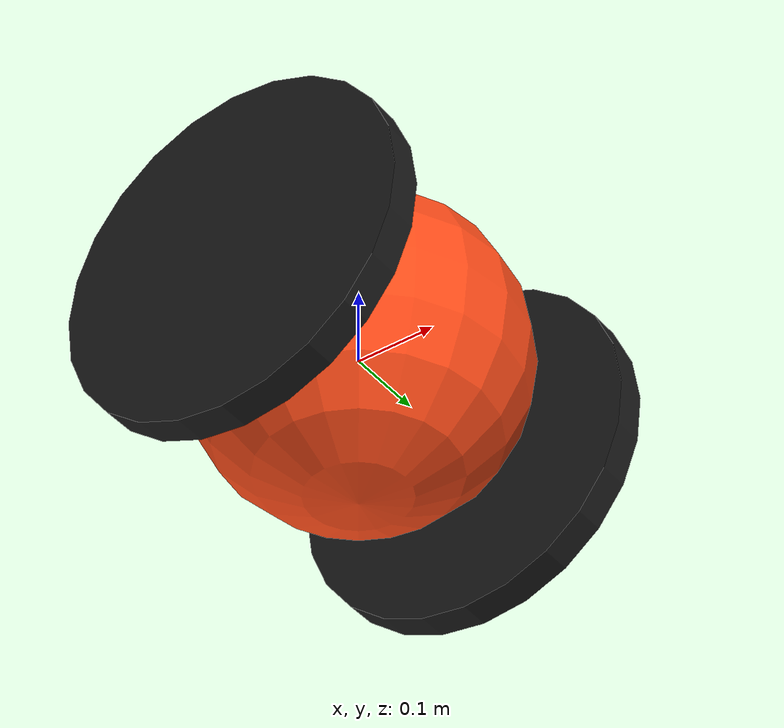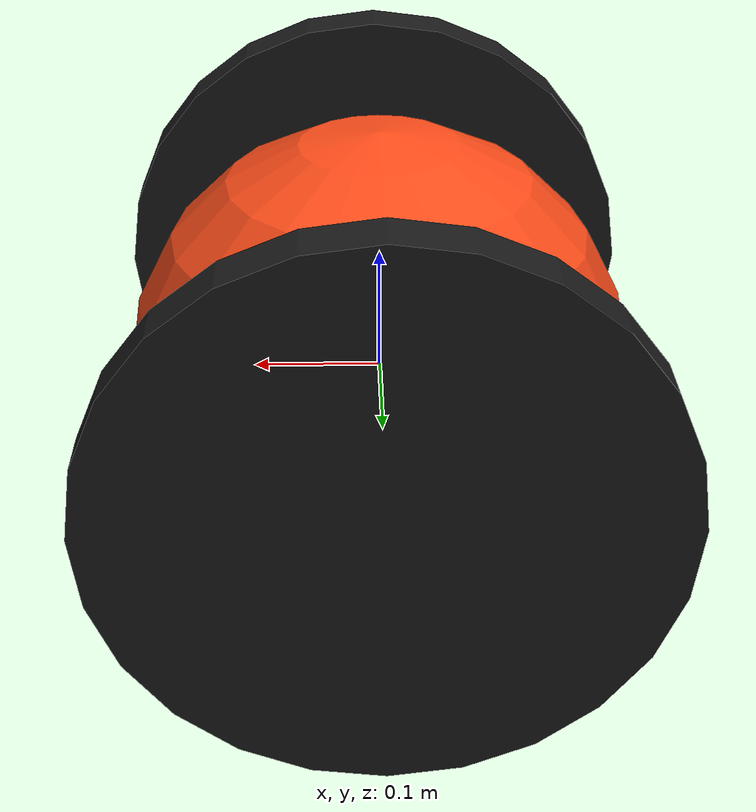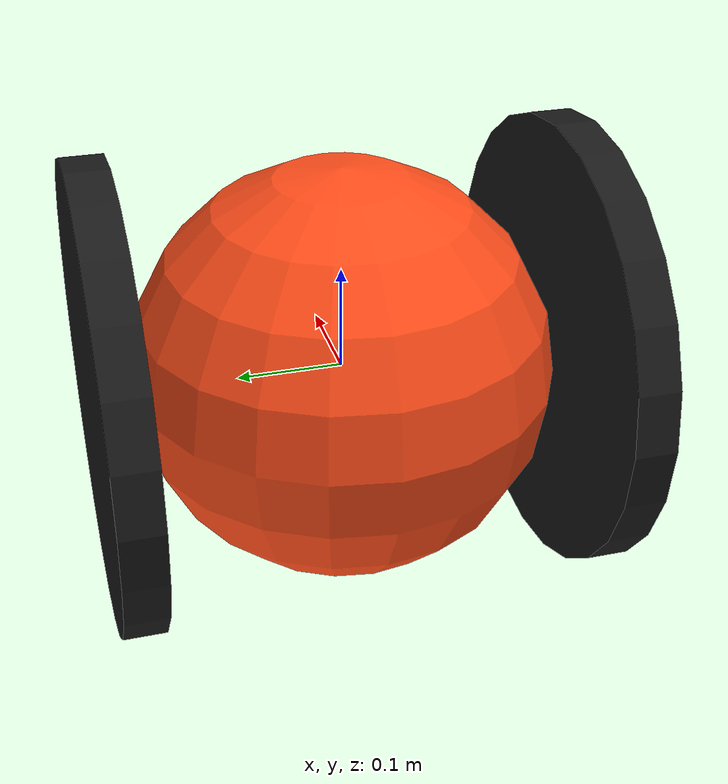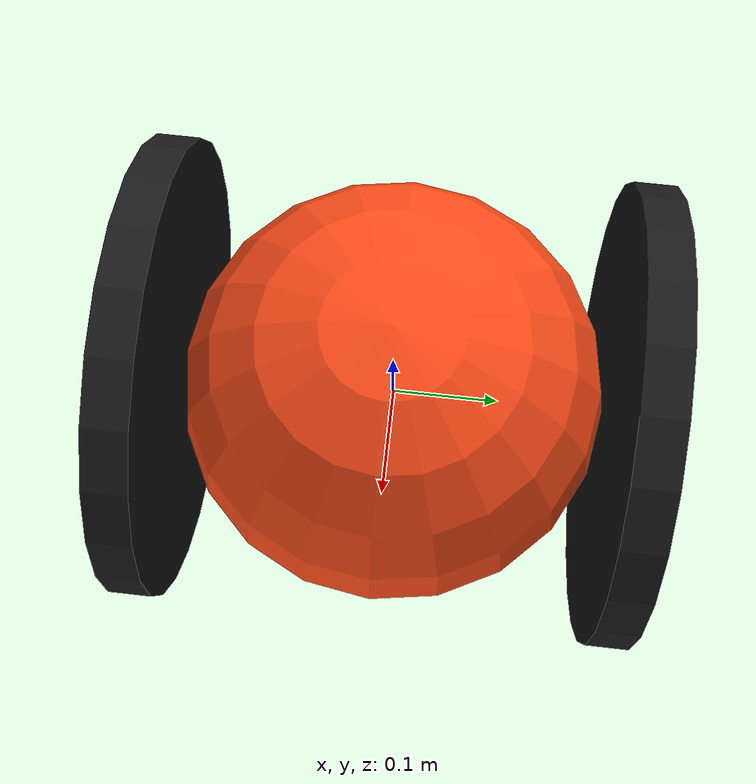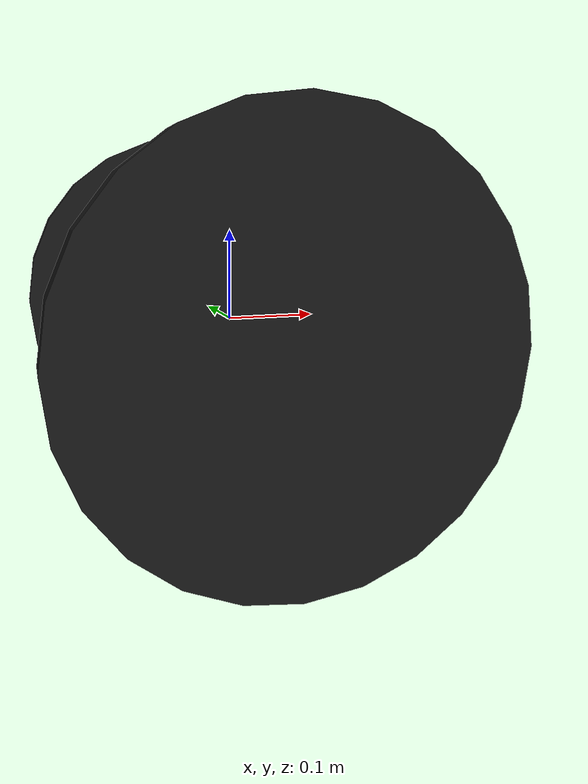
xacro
<?xml version="1.0"?>
<robot xmlns:xacro="http://www.ros.org/wiki/xacro"  name="target">

    <xacro:include filename="target_core.xacro" />

    <xacro:include filename="target_control.xacro"/>

</robot>

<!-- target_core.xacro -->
<robot xmlns:xacro="http://www.ros.org/wiki/xacro">

    <xacro:include filename="inertial_macros.xacro" />

    <material name="orange">
        <color rgba="1 0.3 0.1 1" />
    </material>

    <material name="black">
        <color rgba="0.1 0.1 0.1 1" />
    </material>

    <!-- base link -->

    <link name="base_link">
    </link>

    <!-- shpere link -->

    <joint name="base_sphere_joint" type="fixed">

        <parent link="base_link" />
        <child link="sphere_link" />
        <origin xyz="0 0 0" />

    </joint>

    <link name="sphere_link">

        <visual>
            <geometry>
                <sphere radius="0.2" />
            </geometry>
            <material name="orange" />
        </visual>

        <collision>
            <geometry>
                <sphere radius="0.2" />
            </geometry>
        </collision>

        <xacro:inertial_sphere mass="1.6" radius="0.2">
            <origin xyz="0 0 0" rpy="0 0 0" />
        </xacro:inertial_sphere>

    </link>

    <gazebo reference="sphere_link">
        <material>Gazebo/Orange</material>
    </gazebo>

    <!-- left wheel link -->

    <joint name="sphere_left_wheel_joint" type="continuous">

        <parent link="base_link" />
        <child link="left_wheel_link" />
        <origin xyz="0 0.22 0" rpy="-${pi/2} 0 0" />
        <axis xyz="0 0 1" />

    </joint>

    <link name="left_wheel_link">

        <visual>
            <geometry>
                <cylinder radius="0.22" length="0.04" />
            </geometry>
            <material name="black" />
        </visual>

        <collision>
            <geometry>
                <cylinder radius="0.22" length="0.04" />
            </geometry>
        </collision>

        <xacro:inertial_cylinder mass="0.5" length="0.04" radius="0.22">
            <origin xyz="0 0 0" rpy="0 0 0" />
        </xacro:inertial_cylinder>

    </link>

    <gazebo reference="left_wheel_link">
        <material>Gazebo/Black</material>
    </gazebo>

    <joint name="sphere_right_wheel_joint" type="continuous">

        <parent link="base_link" />
        <child link="right_wheel_link" />
        <origin xyz="0 -0.22 0" rpy="${pi/2} 0 0" />
        <axis xyz="0 0 -1" />

    </joint>

    <link name="right_wheel_link">

        <visual>
            <geometry>
                <cylinder radius="0.22" length="0.04" />
            </geometry>
            <material name="black" />
        </visual>

        <collision>
            <geometry>
                <cylinder radius="0.22" length="0.04" />
            </geometry>
        </collision>

        <xacro:inertial_cylinder mass="0.5" length="0.04" radius="0.22">
            <origin xyz="0 0 0" rpy="0 0 0" />
        </xacro:inertial_cylinder>

    </link>

    <gazebo reference="right_wheel_link">
        <material>Gazebo/Black</material>
    </gazebo>

</robot>
